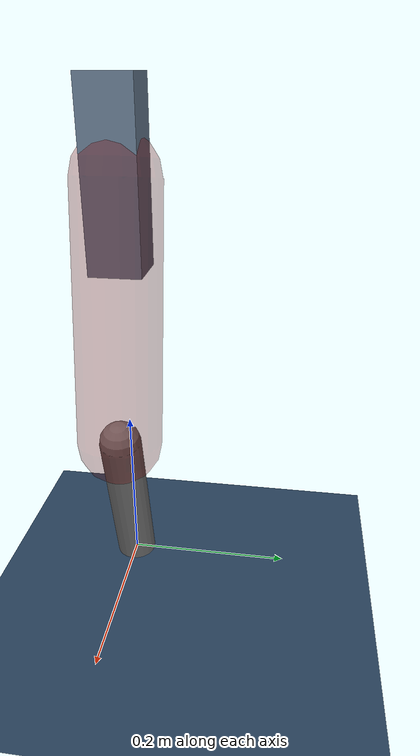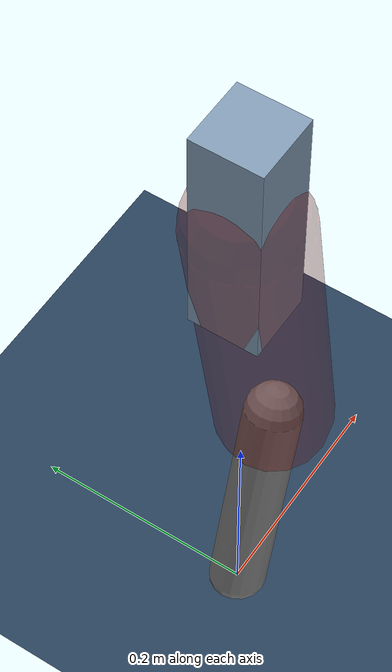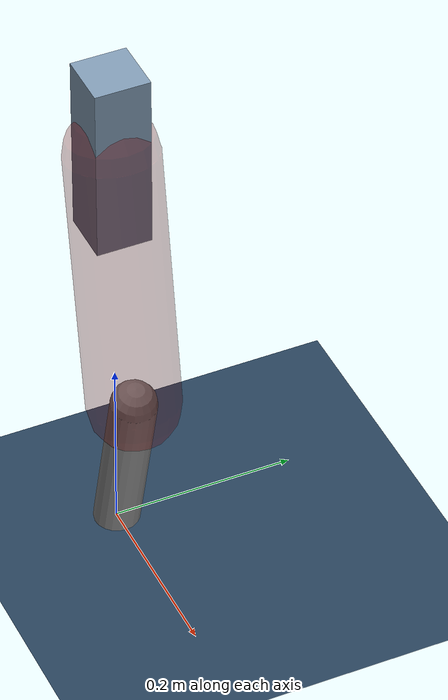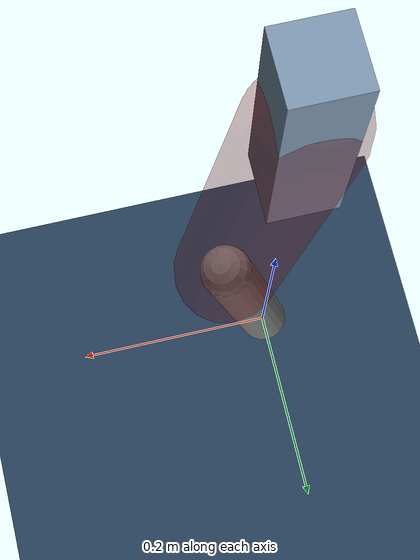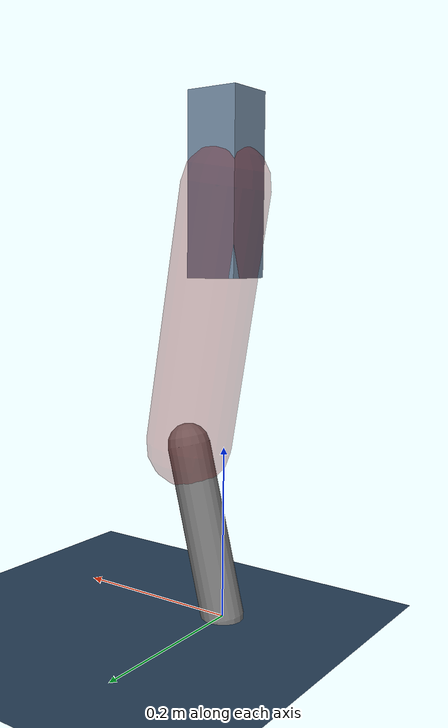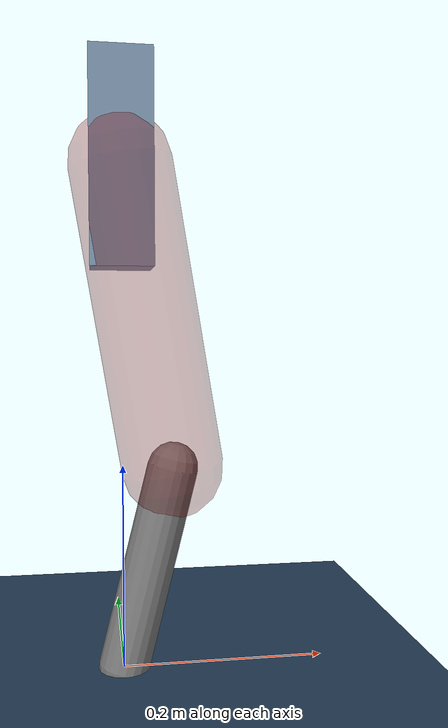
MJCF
<mujoco model="Hopper2D">
	<compiler inertiafromgeom="true" angle="radian" />
	<option timestep="0.001" integrator="implicit" cone="elliptic" solver="Newton" tolerance="1e-10" />

	<default>
		<geom contype="1" conaffinity="1" condim="3" friction="2 0.005 0.0001" solref="0.005 1" />
		<joint limited="true" damping="0.1" />
	</default>

	<asset>
		<texture name="skybox" type="skybox" builtin="gradient" rgb1=".4 .6 .8" rgb2="0 0 0" width="800" height="800" />
		<texture name="grid" type="2d" builtin="checker" rgb1=".1 .2 .3" rgb2=".2 .3 .4" width="300" height="300" mark="edge" markrgb=".2 .3 .4" />
		<material name="ground" texture="grid" texrepeat="1 1" texuniform="true" reflectance="0.1" />
		<material name="leg" rgba="0.5 0.6 0.7 1" />
	</asset>

	<worldbody>

		<geom name="floor" type="plane" size="5 5 0.25" material="ground" />

		<light directional="false" diffuse="0.8 0.8 0.8" specular="0.3 0.3 0.3" pos="0 0 2" dir="0 0 -1" />
		<light mode="targetbodycom" target="base" directional="false" diffuse="0.8 0.8 0.8" specular="0.3 0.3 0.3" pos="0 0 2" dir="0 0 -1" />

		<camera name="fixed" pos="0 -2 1" xyaxes="1 0 0 0 0 1" />
		<camera name="tracking" mode="trackcom" pos="0 -3 1" />

		<body name="root" pos="0 0 0.49129911818965233">
			<joint name="slide_x" type="slide" axis="1 0 0" range="-100 100" />
			<joint name="slide_z" type="slide" axis="0 0 1" range="0 10" />

			<body name="base" pos="0 0 0">
				<geom name="torso" type="box" size="0.03 0.03 0.1" mass="2.657" material="leg" />

				<body name="link1" pos="0 0 0" euler="0 1.4057277061280478 0">
					<joint type="hinge" axis="0 -1 0" pos="0 0 0" name="hinge1" limited="true" range="-3.14 3.14" stiffness="0" damping="0.1" />
					<geom name="thigh" type="capsule" fromto="0 0 0 0.29757375222863003 0 0" size="0.05" rgba="0.5 0 0 0.3" mass="0.9821491310173011" />

					<body name="link2" pos="0.29757375222863003 0 0" euler="0 0.4074508385190149 0">
						<joint type="hinge" axis="0 -1 0" pos="0 0 0" name="hinge2" limited="true" range="-3.14 3.14" stiffness="0" damping="0.1" />
						<geom name="shank" type="capsule" fromto="0 0 0 0.20372536596102234 0 0" size="0.025" mass="0.4040528293649201" />

					</body>
				</body>
			</body>
		</body>
	</worldbody>

	<actuator>
		<motor name="torque1" joint="hinge1" ctrlrange="-122.25844289305128 122.25844289305128" ctrllimited="true" gear="1" />
		<motor name="torque2" joint="hinge2" ctrlrange="-86.48857657211798 86.48857657211798" ctrllimited="true" gear="1" />
	</actuator>
</mujoco>
